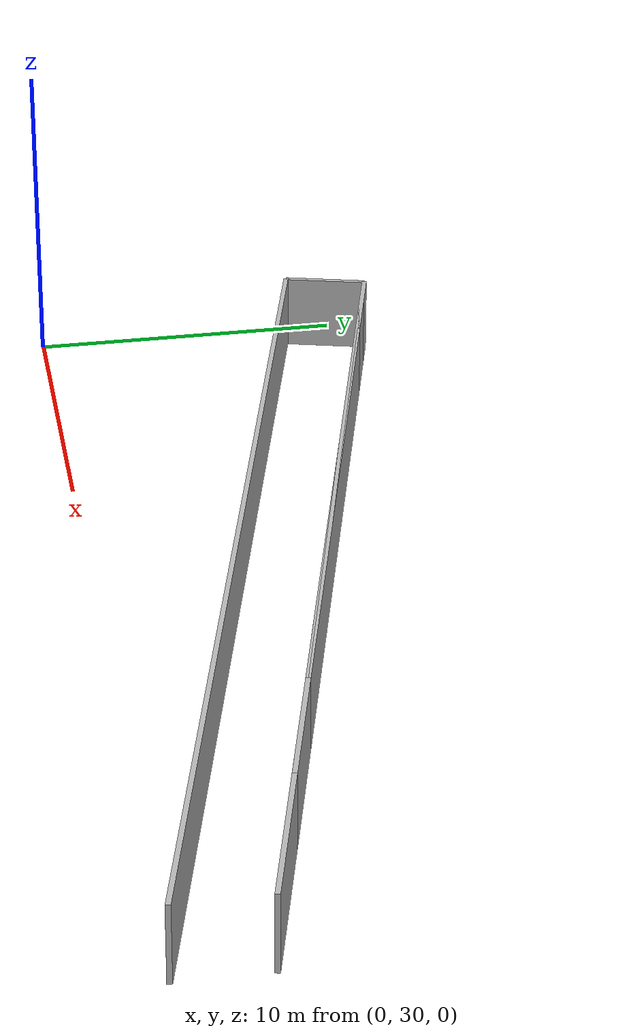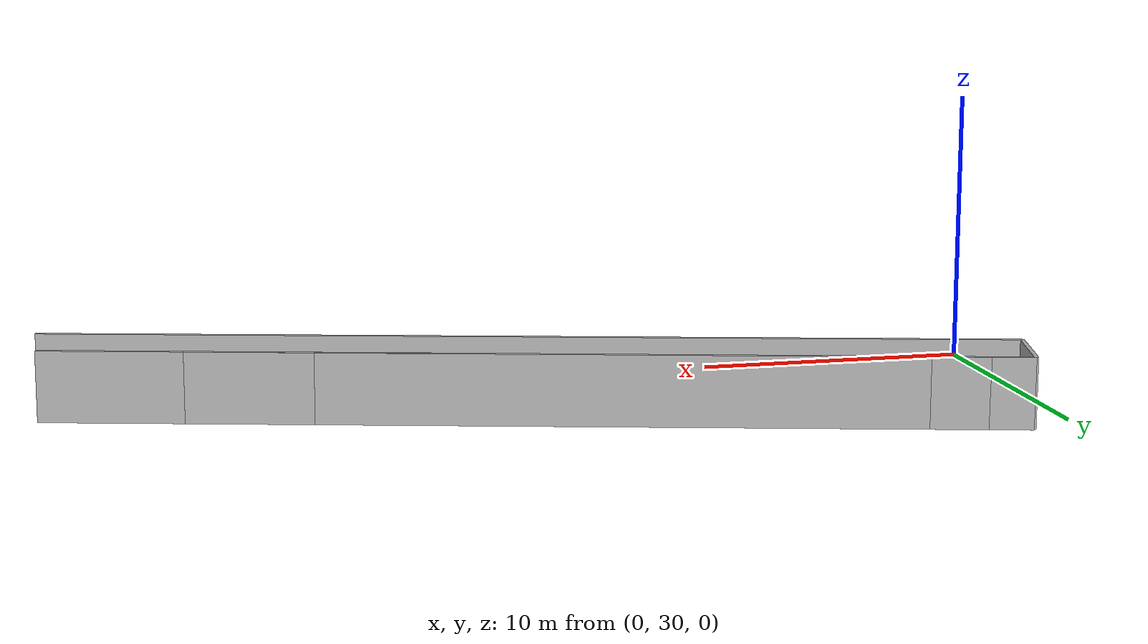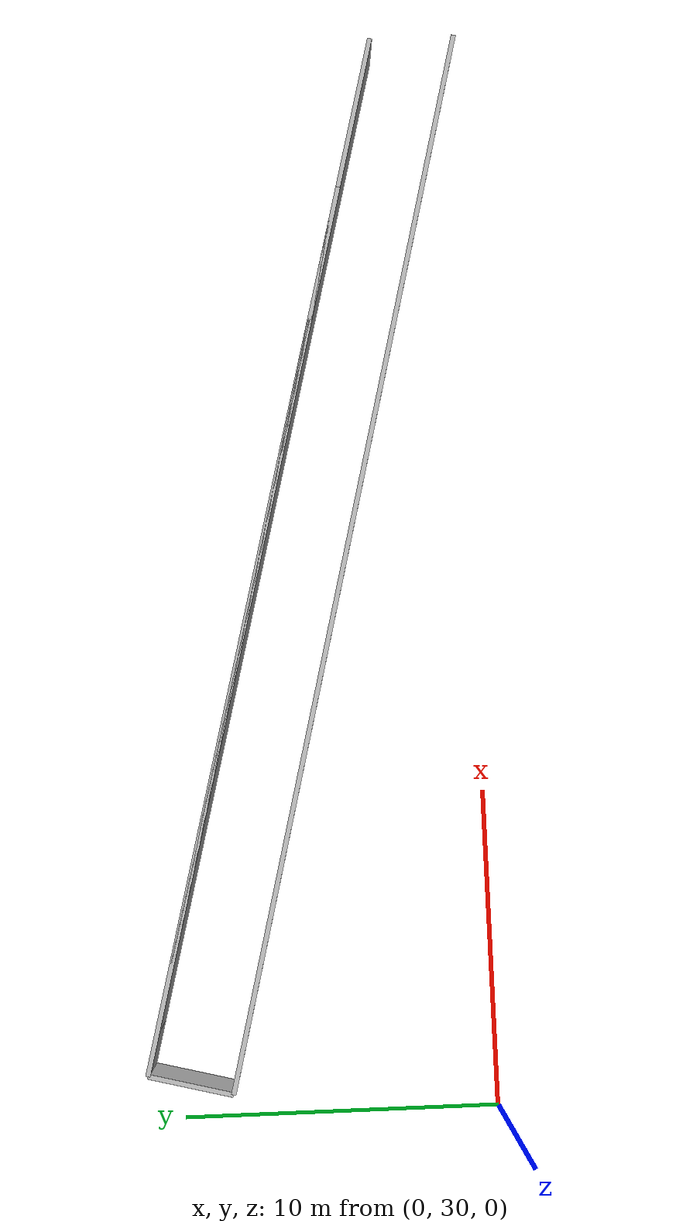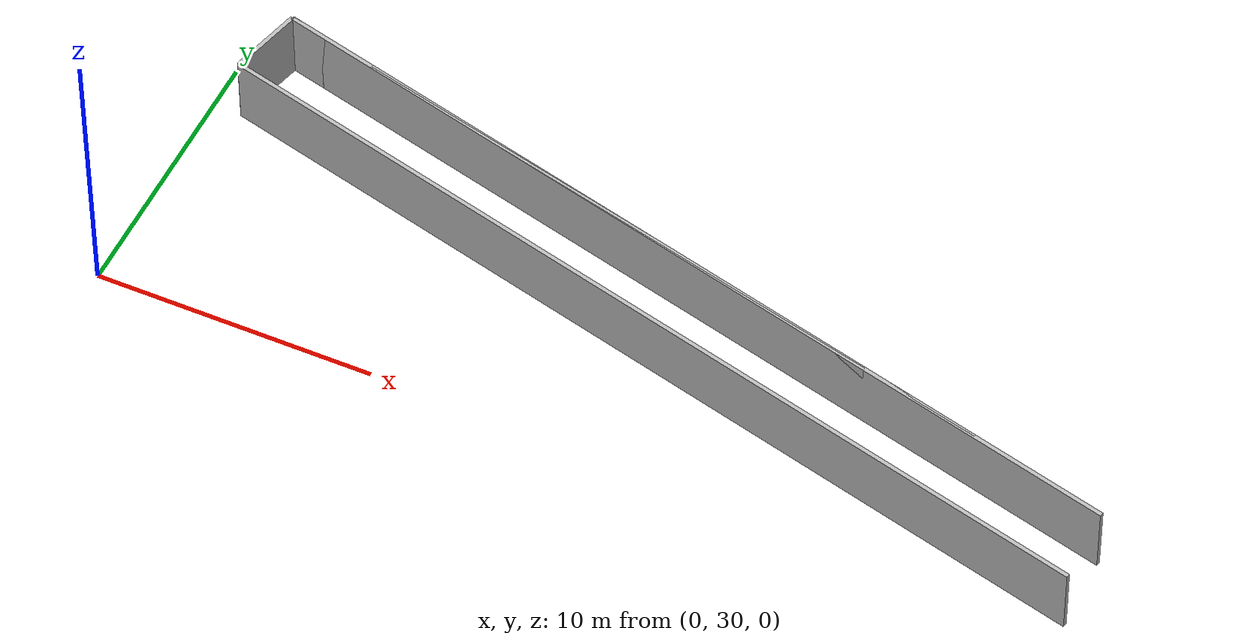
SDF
<?xml version="1.0" ?>
<sdf version="1.6">
  <model name="sps_0407">
    <pose frame="">0 0 0 0 -0 0</pose>
    <static>1</static>
    <self_collide>0</self_collide>
    <allow_auto_disable>0</allow_auto_disable>
    <link name="Wall1">
      <kinematic>0</kinematic>
      <gravity>1</gravity>
      <self_collide>0</self_collide>
      <collision name="collision">
        <geometry>
          <box>
            <size>33.7885 0.15 2.5</size>
          </box>
        </geometry>
        <pose frame="">0 0 0 0 -0 0</pose>
      </collision>
      <visual name="visual">
        <geometry>
          <box>
            <size>33.7885 0.15 2.5</size>
          </box>
        </geometry>
        <pose frame="">0 0 0 0 -0 0</pose>
        <cast_shadows>1</cast_shadows>
        <transparency>0.0</transparency>
      </visual>
      <pose frame="">18.094 36.8253 1.25 0 0 -0.248456</pose>
    </link>
    <link name="Wall410">
      <kinematic>0</kinematic>
      <gravity>1</gravity>
      <self_collide>0</self_collide>
      <collision name="collision">
        <geometry>
          <box>
            <size>34.4564 0.15 2.5</size>
          </box>
        </geometry>
        <pose frame="">0 0 0 0 -0 0</pose>
      </collision>
      <visual name="visual">
        <geometry>
          <box>
            <size>34.4564 0.15 2.5</size>
          </box>
        </geometry>
        <pose frame="">0 0 0 0 -0 0</pose>
        <cast_shadows>1</cast_shadows>
        <transparency>0.0</transparency>
      </visual>
      <pose frame="">17.763 34.1541 1.25 0 -0 2.89487</pose>
    </link>
    <link name="Wall1892">
      <kinematic>0</kinematic>
      <gravity>1</gravity>
      <self_collide>0</self_collide>
      <collision name="collision">
        <geometry>
          <box>
            <size>2.70033 0.15 2.5</size>
          </box>
        </geometry>
        <pose frame="">0 0 0 0 -0 0</pose>
      </collision>
      <visual name="visual">
        <geometry>
          <box>
            <size>2.70033 0.15 2.5</size>
          </box>
        </geometry>
        <pose frame="">0 0 0 0 -0 0</pose>
        <cast_shadows>1</cast_shadows>
        <transparency>0.0</transparency>
      </visual>
      <pose frame="">1.38756 39.6707 1.25 0 -0 1.32319</pose>
    </link>
    <link name="Wall1893">
      <kinematic>0</kinematic>
      <gravity>1</gravity>
      <self_collide>0</self_collide>
      <collision name="collision">
        <geometry>
          <box>
            <size>3.50003 0.15 2.5</size>
          </box>
        </geometry>
        <pose frame="">0 0 0 0 -0 0</pose>
      </collision>
      <visual name="visual">
        <geometry>
          <box>
            <size>3.50003 0.15 2.5</size>
          </box>
        </geometry>
        <pose frame="">0 0 0 0 -0 0</pose>
        <cast_shadows>1</cast_shadows>
        <transparency>0.0</transparency>
      </visual>
      <pose frame="">3.41476 40.5494 1.25 0 0 -0.24843</pose>
    </link>
    <link name="Wall1894">
      <kinematic>0</kinematic>
      <gravity>1</gravity>
      <self_collide>0</self_collide>
      <collision name="collision">
        <geometry>
          <box>
            <size>20.7865 0.15 2.5</size>
          </box>
        </geometry>
        <pose frame="">0 0 0 0 -0 0</pose>
      </collision>
      <visual name="visual">
        <geometry>
          <box>
            <size>20.7865 0.15 2.5</size>
          </box>
        </geometry>
        <pose frame="">0 0 0 0 -0 0</pose>
        <cast_shadows>1</cast_shadows>
        <transparency>0.0</transparency>
      </visual>
      <pose frame="">15.1851 37.5633 1.25 0 0 -0.248457</pose>
    </link>
    <link name="Wall1895">
      <kinematic>0</kinematic>
      <gravity>1</gravity>
      <self_collide>0</self_collide>
      <collision name="collision">
        <geometry>
          <box>
            <size>4.43888 0.15 2.5</size>
          </box>
        </geometry>
        <pose frame="">0 0 0 0 -0 0</pose>
      </collision>
      <visual name="visual">
        <geometry>
          <box>
            <size>4.43888 0.15 2.5</size>
          </box>
        </geometry>
        <pose frame="">0 0 0 0 -0 0</pose>
        <cast_shadows>1</cast_shadows>
        <transparency>0.0</transparency>
      </visual>
      <pose frame="">27.4105 34.4618 1.25 0 0 -0.248427</pose>
    </link>
  </model>
</sdf>
